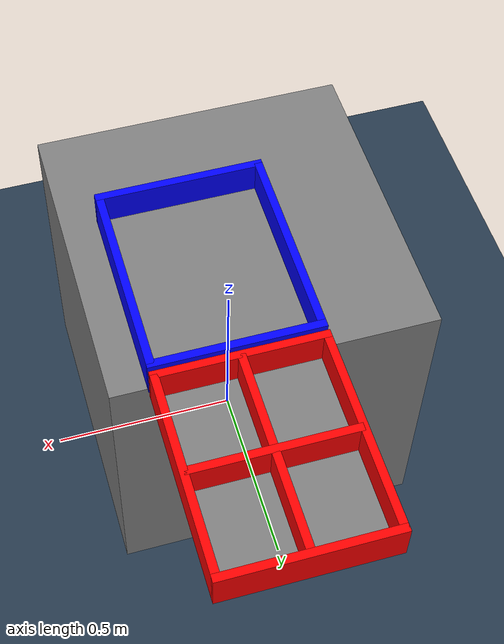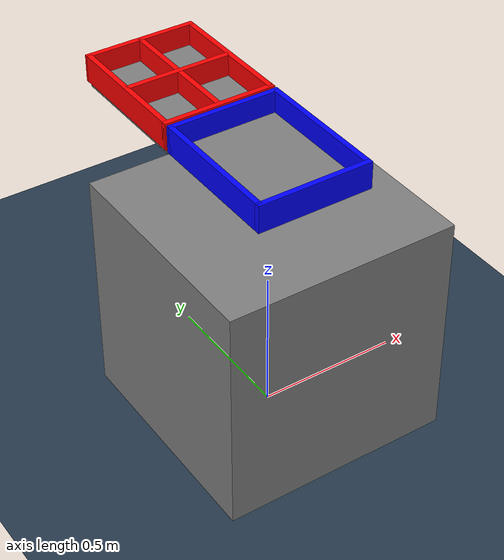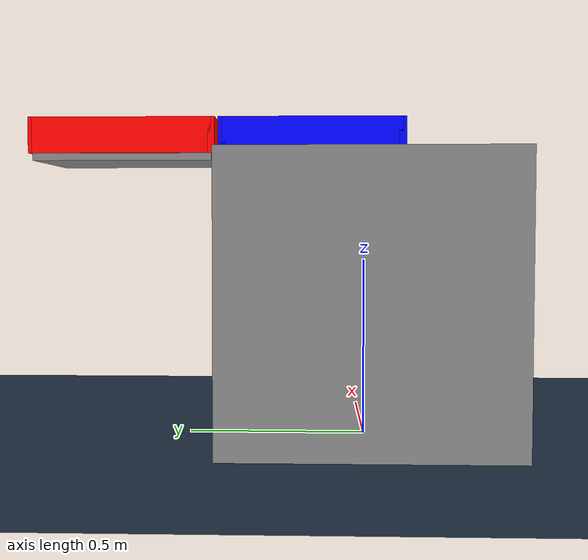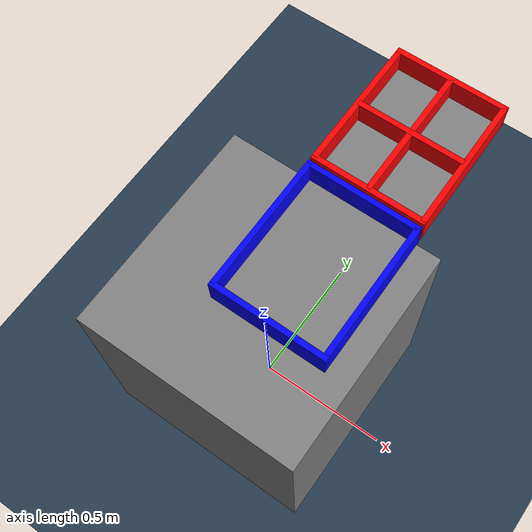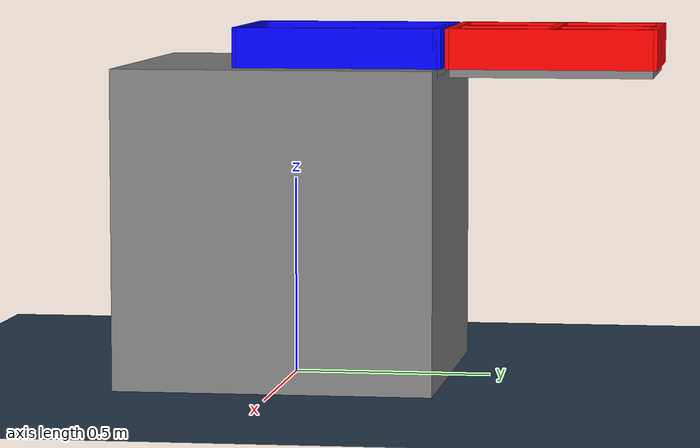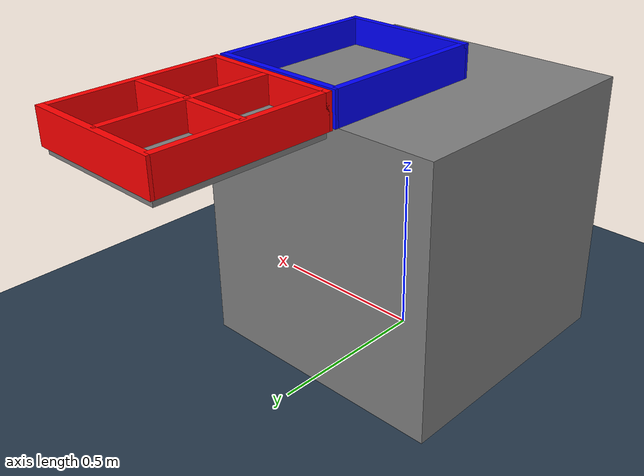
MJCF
<mujoco model="table_arena">
  <asset>
    <texture builtin="gradient" height="256" rgb1=".9 .9 1." rgb2=".2 .3 .4" type="skybox" width="256"/>
    <texture builtin="checker" height="512" name="texplane" rgb1=".2 .3 .4" rgb2=".1 0.15 0.2" type="2d" width="512"/>
    <material name="floorplane" reflectance="0.5" texrepeat="1 1" texture="texplane" texuniform="true"/>
    <texture file="../textures/light-wood.png" type="2d" name="tex-light-wood"/>
    <texture file="../textures/dark-wood.png" type="2d" name="tex-dark-wood"/>
    <material name="light-wood" reflectance="0.5" texrepeat="15 15" texture="tex-light-wood" texuniform="true"/>
    <material name="dark-wood" reflectance="0.5" texrepeat="5 5" texture="tex-dark-wood" texuniform="true"/>
  </asset>

  <worldbody>
    <geom condim="3" material="floorplane" name="floor" pos="0 0 0" size="3 3 .125" type="plane"/>
    <body name="table" pos="0 0 0.4">
      <geom pos="0 0 0" size="0.4 0.4 0.4" type="box" name="table_collision" friction="1 0.005 0.0001"/>
      <geom pos="0 0 0" size="0.4 0.4 0.4" type="box" conaffinity="0" contype="0" group="1" name="table_visual"/>
      <site pos="0 0 0.4" name="table_top" size="0.001 0.001 0.001" rgba="0 0 0 0"/>
  </body>

    <body name="bin1" pos="0.1 0.15 0.8">
      <geom pos="0 0 0" size="0.2 0.25 0.02" type="box" friction="1 0.005 0.0001"/>
      <geom pos="0 0 0" material="light-wood" size="0.2 0.25 0.02" type="box" conaffinity="0" contype="0" group="1"/>
        <geom pos="0 0.25 0.05" size="0.21 0.01 0.05" type="box" friction="1 0.005 0.0001" rgba="0 0 1 1"/>
        <geom pos="0 0.25 0.05" size="0.21 0.01 0.05" type="box" conaffinity="0" contype="0" group="1" material="light-wood"/>
        <geom pos="0 -0.25 0.05" size="0.21 0.01 0.05" type="box" friction="1 0.005 0.0001" rgba="0 0 1 1"/>
        <geom pos="0 -0.25 0.05" size="0.21 0.01 0.05" type="box" conaffinity="0" contype="0" group="1" material="light-wood"/>
        <geom pos="0.2 0 0.05" size="0.01 0.25 0.05" type="box" friction="1 0.005 0.0001" rgba="0 0 1 1"/>
        <geom pos="0.2 0 0.05" size="0.01 0.25 0.05" type="box" conaffinity="0" contype="0" group="1" material="light-wood"/>
        <geom pos="-0.2 0 0.05" size="0.01 0.25 0.05" type="box" friction="1 0.005 0.0001" rgba="0 0 1 1"/>
        <geom pos="-0.2 0 0.05" size="0.01 0.25 0.05" type="box" conaffinity="0" contype="0" group="1" material="light-wood"/>
    </body>
    <body name="bin2" pos="0.1 0.68 0.8">
      <geom pos="0 0 0" size="0.2 0.25 0.02" type="box" friction="1 0.005 0.0001"/>
      <geom pos="0 0 0" size="0.2 0.25 0.02" type="box" conaffinity="0" contype="0" group="1" material="dark-wood"/>
        <geom pos="0 0.25 0.05" size="0.21 0.01 0.05" type="box" friction="1 0.005 0.0001" rgba="1 0 0 1"/>
        <geom pos="0 0.25 0.05" size="0.21 0.01 0.05" type="box" conaffinity="0" contype="0" group="1" material="dark-wood"/>
        <geom pos="0 0 0.05" size="0.2 0.01 0.05" type="box" friction="1 0.005 0.0001" rgba="1 0 0 1"/>
        <geom pos="0 0 0.05" size="0.2 0.01 0.05" type="box" conaffinity="0" contype="0" group="1" material="dark-wood"/>
        <geom pos="0 -0.25 0.05" size="0.21 0.01 0.05" type="box" friction="1 0.005 0.0001" rgba="1 0 0 1"/>
        <geom pos="0 -0.25 0.05" size="0.21 0.01 0.05" type="box" conaffinity="0" contype="0" group="1" material="dark-wood"/>
        <geom pos="0.2 0 0.05" size="0.01 0.25 0.05" type="box" friction="1 0.005 0.0001" rgba="1 0 0 1"/>
        <geom pos="0.2 0 0.05" size="0.01 0.25 0.05" type="box" conaffinity="0" contype="0" group="1" material="dark-wood"/>
        <geom pos="0 0 0.05" size="0.01 0.25 0.05" type="box" friction="1 0.005 0.0001" rgba="1 0 0 1"/>
        <geom pos="0 0 0.05" size="0.01 0.25 0.05" type="box" conaffinity="0" contype="0" group="1" material="dark-wood"/>
        <geom pos="-0.2 0 0.05" size="0.01 0.25 0.05" type="box" friction="1 0.005 0.0001" rgba="1 0 0 1"/>
        <geom pos="-0.2 0 0.05" size="0.01 0.25 0.05" type="box" conaffinity="0" contype="0" group="1" material="dark-wood"/>
    </body>

    <light diffuse=".8 .8 .8" dir="0 -.15 -1" directional="false" pos="1 1 4.0" specular="0.3 0.3 0.3" castshadow="false"/>
    <light diffuse=".8 .8 .8" dir="0 -.15 -1" directional="false" pos="-3. -3. 4.0" specular="0.3 0.3 0.3" castshadow="false"/>
    <!-- front view -->
    <camera mode="fixed" name="frontview" pos="1.6 0 1.45" quat="0.56 0.43 0.43 0.56"/>
    <!-- bird view -->
    <camera mode="fixed" name="birdview" pos="-0.2 0 3.0" quat="0.7071 0 0 0.7071"/>
    <!-- agent view -->
    <camera mode="fixed" name="agentview" pos="0.5 0 1.35" quat="0.653 0.271 0.271 0.653"/>
  </worldbody>
</mujoco>
